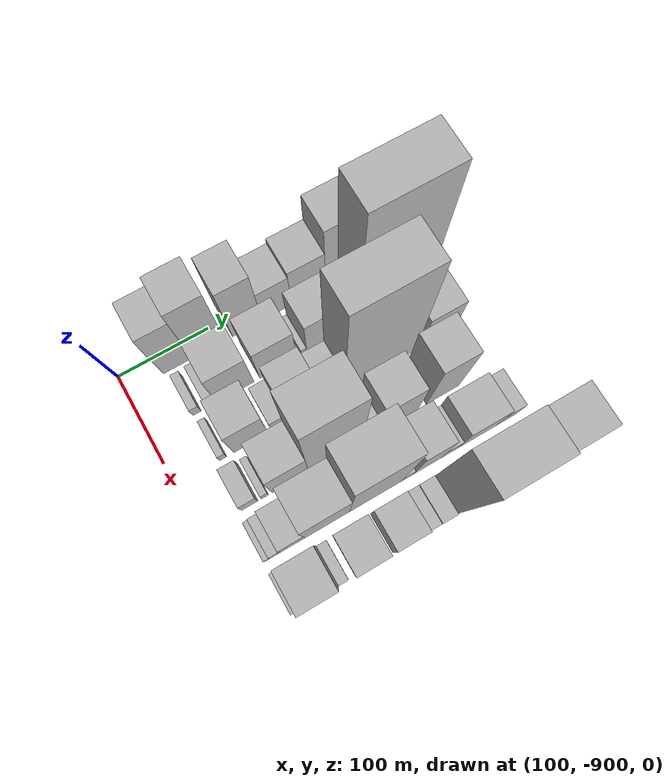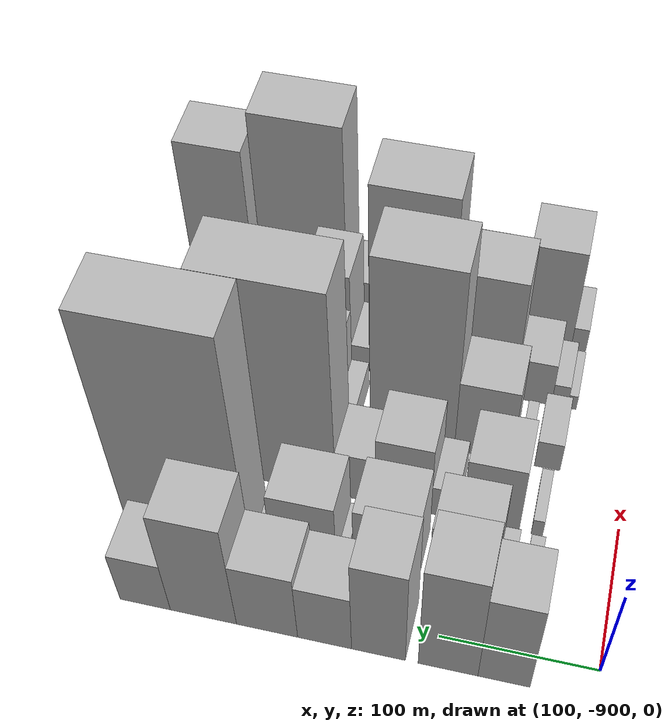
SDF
<sdf version="1.6">
 <world name="default">
  <model name="building_1">
   <static>1</static>
   <pose>100.0000 -844.0381 0 0.000000 0.000000 0.000000</pose>
   <link name="link">
    <pose>0 0 51.00 0 0 0</pose>
    <collision name="collision"><geometry><box><size>40.0000 31.9238 102.0000</size></box></geometry></collision>
    <visual name="visual">
     <cast_shadows>0</cast_shadows>
     <geometry><box><size>40.0000 31.9238 102.0000</size></box></geometry>
     <material>
      <script>
       <uri>model://HANNAS_wall/materials/scripts</uri>
       <uri>model://HANNAS_wall/materials/textures</uri>
       <name>vrc/HANNAS_wall</name>
      </script>
     </material>
    </visual>
   </link>
  </model>
  <model name="building_2">
   <static>1</static>
   <pose>100.0000 -809.5243 0 0.000000 0.000000 0.000000</pose>
   <link name="link">
    <pose>0 0 60.00 0 0 0</pose>
    <collision name="collision"><geometry><box><size>40.0000 37.1037 120.0000</size></box></geometry></collision>
    <visual name="visual">
     <cast_shadows>0</cast_shadows>
     <geometry><box><size>40.0000 37.1037 120.0000</size></box></geometry>
     <material>
      <script>
       <uri>model://HANNAS_wall/materials/scripts</uri>
       <uri>model://HANNAS_wall/materials/textures</uri>
       <name>vrc/HANNAS_wall</name>
      </script>
     </material>
    </visual>
   </link>
  </model>
  <model name="building_3">
   <static>1</static>
   <pose>100.0000 -766.0664 0 0.000000 0.000000 0.000000</pose>
   <link name="link">
    <pose>0 0 54.00 0 0 0</pose>
    <collision name="collision"><geometry><box><size>40.0000 33.8120 108.0000</size></box></geometry></collision>
    <visual name="visual">
     <cast_shadows>0</cast_shadows>
     <geometry><box><size>40.0000 33.8120 108.0000</size></box></geometry>
     <material>
      <script>
       <uri>model://HANNAS_wall/materials/scripts</uri>
       <uri>model://HANNAS_wall/materials/textures</uri>
       <name>vrc/HANNAS_wall</name>
      </script>
     </material>
    </visual>
   </link>
  </model>
  <model name="building_4">
   <static>1</static>
   <pose>100.0000 -732.0055 0 0.000000 0.000000 0.000000</pose>
   <link name="link">
    <pose>0 0 33.00 0 0 0</pose>
    <collision name="collision"><geometry><box><size>40.0000 34.3099 66.0000</size></box></geometry></collision>
    <visual name="visual">
     <cast_shadows>0</cast_shadows>
     <geometry><box><size>40.0000 34.3099 66.0000</size></box></geometry>
     <material>
      <script>
       <uri>model://HANNAS_wall/materials/scripts</uri>
       <uri>model://HANNAS_wall/materials/textures</uri>
       <name>vrc/HANNAS_wall</name>
      </script>
     </material>
    </visual>
   </link>
  </model>
  <model name="building_5">
   <static>1</static>
   <pose>100.0000 -695.1913 0 0.000000 0.000000 0.000000</pose>
   <link name="link">
    <pose>0 0 37.50 0 0 0</pose>
    <collision name="collision"><geometry><box><size>40.0000 39.3186 75.0000</size></box></geometry></collision>
    <visual name="visual">
     <cast_shadows>0</cast_shadows>
     <geometry><box><size>40.0000 39.3186 75.0000</size></box></geometry>
     <material>
      <script>
       <uri>model://HANNAS_wall/materials/scripts</uri>
       <uri>model://HANNAS_wall/materials/textures</uri>
       <name>vrc/HANNAS_wall</name>
      </script>
     </material>
    </visual>
   </link>
  </model>
  <model name="building_6">
   <static>1</static>
   <pose>100.0000 -653.9232 0 0.000000 0.000000 0.000000</pose>
   <link name="link">
    <pose>0 0 58.50 0 0 0</pose>
    <collision name="collision"><geometry><box><size>40.0000 43.2176 117.0000</size></box></geometry></collision>
    <visual name="visual">
     <cast_shadows>0</cast_shadows>
     <geometry><box><size>40.0000 43.2176 117.0000</size></box></geometry>
     <material>
      <script>
       <uri>model://HANNAS_wall/materials/scripts</uri>
       <uri>model://HANNAS_wall/materials/textures</uri>
       <name>vrc/HANNAS_wall</name>
      </script>
     </material>
    </visual>
   </link>
  </model>
  <model name="building_7">
   <static>1</static>
   <pose>100.0000 -615.7278 0 0.000000 0.000000 0.000000</pose>
   <link name="link">
    <pose>0 0 28.50 0 0 0</pose>
    <collision name="collision"><geometry><box><size>40.0000 33.1732 57.0000</size></box></geometry></collision>
    <visual name="visual">
     <cast_shadows>0</cast_shadows>
     <geometry><box><size>40.0000 33.1732 57.0000</size></box></geometry>
     <material>
      <script>
       <uri>model://HANNAS_wall/materials/scripts</uri>
       <uri>model://HANNAS_wall/materials/textures</uri>
       <name>vrc/HANNAS_wall</name>
      </script>
     </material>
    </visual>
   </link>
  </model>
  <model name="building_52">
   <static>1</static>
   <pose>152.0000 -849.5073 0 0.000000 0.000000 0.000000</pose>
   <link name="link">
    <pose>0 0 10.50 0 0 0</pose>
    <collision name="collision"><geometry><box><size>40.0000 8.9854 21.0000</size></box></geometry></collision>
    <visual name="visual">
     <cast_shadows>0</cast_shadows>
     <geometry><box><size>40.0000 8.9854 21.0000</size></box></geometry>
     <material>
      <script>
       <uri>model://HANNAS_wall/materials/scripts</uri>
       <uri>model://HANNAS_wall/materials/textures</uri>
       <name>vrc/HANNAS_wall</name>
      </script>
     </material>
    </visual>
   </link>
  </model>
  <model name="building_53">
   <static>1</static>
   <pose>152.0000 -833.0063 0 0.000000 0.000000 0.000000</pose>
   <link name="link">
    <pose>0 0 12.00 0 0 0</pose>
    <collision name="collision"><geometry><box><size>40.0000 10.0165 24.0000</size></box></geometry></collision>
    <visual name="visual">
     <cast_shadows>0</cast_shadows>
     <geometry><box><size>40.0000 10.0165 24.0000</size></box></geometry>
     <material>
      <script>
       <uri>model://HANNAS_wall/materials/scripts</uri>
       <uri>model://HANNAS_wall/materials/textures</uri>
       <name>vrc/HANNAS_wall</name>
      </script>
     </material>
    </visual>
   </link>
  </model>
  <model name="building_54">
   <static>1</static>
   <pose>152.0000 -807.3436 0 0.000000 0.000000 0.000000</pose>
   <link name="link">
    <pose>0 0 37.50 0 0 0</pose>
    <collision name="collision"><geometry><box><size>40.0000 41.3090 75.0000</size></box></geometry></collision>
    <visual name="visual">
     <cast_shadows>0</cast_shadows>
     <geometry><box><size>40.0000 41.3090 75.0000</size></box></geometry>
     <material>
      <script>
       <uri>model://HANNAS_wall/materials/scripts</uri>
       <uri>model://HANNAS_wall/materials/textures</uri>
       <name>vrc/HANNAS_wall</name>
      </script>
     </material>
    </visual>
   </link>
  </model>
  <model name="building_55">
   <static>1</static>
   <pose>152.0000 -758.8439 0 0.000000 0.000000 0.000000</pose>
   <link name="link">
    <pose>0 0 37.50 0 0 0</pose>
    <collision name="collision"><geometry><box><size>40.0000 41.6903 75.0000</size></box></geometry></collision>
    <visual name="visual">
     <cast_shadows>0</cast_shadows>
     <geometry><box><size>40.0000 41.6903 75.0000</size></box></geometry>
     <material>
      <script>
       <uri>model://HANNAS_wall/materials/scripts</uri>
       <uri>model://HANNAS_wall/materials/textures</uri>
       <name>vrc/HANNAS_wall</name>
      </script>
     </material>
    </visual>
   </link>
  </model>
  <model name="building_56">
   <static>1</static>
   <pose>152.0000 -729.8422 0 0.000000 0.000000 0.000000</pose>
   <link name="link">
    <pose>0 0 7.50 0 0 0</pose>
    <collision name="collision"><geometry><box><size>40.0000 6.3131 15.0000</size></box></geometry></collision>
    <visual name="visual">
     <cast_shadows>0</cast_shadows>
     <geometry><box><size>40.0000 6.3131 15.0000</size></box></geometry>
     <material>
      <script>
       <uri>model://HANNAS_wall/materials/scripts</uri>
       <uri>model://HANNAS_wall/materials/textures</uri>
       <name>vrc/HANNAS_wall</name>
      </script>
     </material>
    </visual>
   </link>
  </model>
  <model name="building_57">
   <static>1</static>
   <pose>152.0000 -705.1297 0 0.000000 0.000000 0.000000</pose>
   <link name="link">
    <pose>0 0 36.00 0 0 0</pose>
    <collision name="collision"><geometry><box><size>40.0000 43.1120 72.0000</size></box></geometry></collision>
    <visual name="visual">
     <cast_shadows>0</cast_shadows>
     <geometry><box><size>40.0000 43.1120 72.0000</size></box></geometry>
     <material>
      <script>
       <uri>model://HANNAS_wall/materials/scripts</uri>
       <uri>model://HANNAS_wall/materials/textures</uri>
       <name>vrc/HANNAS_wall</name>
      </script>
     </material>
    </visual>
   </link>
  </model>
  <model name="building_58">
   <static>1</static>
   <pose>152.0000 -678.5776 0 0.000000 0.000000 0.000000</pose>
   <link name="link">
    <pose>0 0 10.50 0 0 0</pose>
    <collision name="collision"><geometry><box><size>40.0000 9.9922 21.0000</size></box></geometry></collision>
    <visual name="visual">
     <cast_shadows>0</cast_shadows>
     <geometry><box><size>40.0000 9.9922 21.0000</size></box></geometry>
     <material>
      <script>
       <uri>model://HANNAS_wall/materials/scripts</uri>
       <uri>model://HANNAS_wall/materials/textures</uri>
       <name>vrc/HANNAS_wall</name>
      </script>
     </material>
    </visual>
   </link>
  </model>
  <model name="building_59">
   <static>1</static>
   <pose>152.0000 -627.0534 0 0.000000 0.000000 0.000000</pose>
   <link name="link">
    <pose>0 0 112.50 0 0 0</pose>
    <collision name="collision"><geometry><box><size>40.0000 83.0562 225.0000</size></box></geometry></collision>
    <visual name="visual">
     <cast_shadows>0</cast_shadows>
     <geometry><box><size>40.0000 83.0562 225.0000</size></box></geometry>
     <material>
      <script>
       <uri>model://HANNAS_wall/materials/scripts</uri>
       <uri>model://HANNAS_wall/materials/textures</uri>
       <name>vrc/HANNAS_wall</name>
      </script>
     </material>
    </visual>
   </link>
  </model>
  <model name="building_99">
   <static>1</static>
   <pose>204.0000 -848.2488 0 0.000000 0.000000 0.000000</pose>
   <link name="link">
    <pose>0 0 9.00 0 0 0</pose>
    <collision name="collision"><geometry><box><size>40.0000 7.5025 18.0000</size></box></geometry></collision>
    <visual name="visual">
     <cast_shadows>0</cast_shadows>
     <geometry><box><size>40.0000 7.5025 18.0000</size></box></geometry>
     <material>
      <script>
       <uri>model://HANNAS_wall/materials/scripts</uri>
       <uri>model://HANNAS_wall/materials/textures</uri>
       <name>vrc/HANNAS_wall</name>
      </script>
     </material>
    </visual>
   </link>
  </model>
  <model name="building_100">
   <static>1</static>
   <pose>204.0000 -817.7862 0 0.000000 0.000000 0.000000</pose>
   <link name="link">
    <pose>0 0 36.00 0 0 0</pose>
    <collision name="collision"><geometry><box><size>40.0000 37.4227 72.0000</size></box></geometry></collision>
    <visual name="visual">
     <cast_shadows>0</cast_shadows>
     <geometry><box><size>40.0000 37.4227 72.0000</size></box></geometry>
     <material>
      <script>
       <uri>model://HANNAS_wall/materials/scripts</uri>
       <uri>model://HANNAS_wall/materials/textures</uri>
       <name>vrc/HANNAS_wall</name>
      </script>
     </material>
    </visual>
   </link>
  </model>
  <model name="building_101">
   <static>1</static>
   <pose>204.0000 -786.5341 0 0.000000 0.000000 0.000000</pose>
   <link name="link">
    <pose>0 0 16.50 0 0 0</pose>
    <collision name="collision"><geometry><box><size>40.0000 17.0814 33.0000</size></box></geometry></collision>
    <visual name="visual">
     <cast_shadows>0</cast_shadows>
     <geometry><box><size>40.0000 17.0814 33.0000</size></box></geometry>
     <material>
      <script>
       <uri>model://HANNAS_wall/materials/scripts</uri>
       <uri>model://HANNAS_wall/materials/textures</uri>
       <name>vrc/HANNAS_wall</name>
      </script>
     </material>
    </visual>
   </link>
  </model>
  <model name="building_102">
   <static>1</static>
   <pose>204.0000 -759.0897 0 0.000000 0.000000 0.000000</pose>
   <link name="link">
    <pose>0 0 37.50 0 0 0</pose>
    <collision name="collision"><geometry><box><size>40.0000 37.8073 75.0000</size></box></geometry></collision>
    <visual name="visual">
     <cast_shadows>0</cast_shadows>
     <geometry><box><size>40.0000 37.8073 75.0000</size></box></geometry>
     <material>
      <script>
       <uri>model://HANNAS_wall/materials/scripts</uri>
       <uri>model://HANNAS_wall/materials/textures</uri>
       <name>vrc/HANNAS_wall</name>
      </script>
     </material>
    </visual>
   </link>
  </model>
  <model name="building_103">
   <static>1</static>
   <pose>204.0000 -726.8098 0 0.000000 0.000000 0.000000</pose>
   <link name="link">
    <pose>0 0 25.50 0 0 0</pose>
    <collision name="collision"><geometry><box><size>40.0000 26.7525 51.0000</size></box></geometry></collision>
    <visual name="visual">
     <cast_shadows>0</cast_shadows>
     <geometry><box><size>40.0000 26.7525 51.0000</size></box></geometry>
     <material>
      <script>
       <uri>model://HANNAS_wall/materials/scripts</uri>
       <uri>model://HANNAS_wall/materials/textures</uri>
       <name>vrc/HANNAS_wall</name>
      </script>
     </material>
    </visual>
   </link>
  </model>
  <model name="building_104">
   <static>1</static>
   <pose>204.0000 -672.8564 0 0.000000 0.000000 0.000000</pose>
   <link name="link">
    <pose>0 0 105.00 0 0 0</pose>
    <collision name="collision"><geometry><box><size>40.0000 81.1543 210.0000</size></box></geometry></collision>
    <visual name="visual">
     <cast_shadows>0</cast_shadows>
     <geometry><box><size>40.0000 81.1543 210.0000</size></box></geometry>
     <material>
      <script>
       <uri>model://HANNAS_wall/materials/scripts</uri>
       <uri>model://HANNAS_wall/materials/textures</uri>
       <name>vrc/HANNAS_wall</name>
      </script>
     </material>
    </visual>
   </link>
  </model>
  <model name="building_105">
   <static>1</static>
   <pose>204.0000 -606.0119 0 0.000000 0.000000 0.000000</pose>
   <link name="link">
    <pose>0 0 37.50 0 0 0</pose>
    <collision name="collision"><geometry><box><size>40.0000 38.5346 75.0000</size></box></geometry></collision>
    <visual name="visual">
     <cast_shadows>0</cast_shadows>
     <geometry><box><size>40.0000 38.5346 75.0000</size></box></geometry>
     <material>
      <script>
       <uri>model://HANNAS_wall/materials/scripts</uri>
       <uri>model://HANNAS_wall/materials/textures</uri>
       <name>vrc/HANNAS_wall</name>
      </script>
     </material>
    </visual>
   </link>
  </model>
  <model name="building_147">
   <static>1</static>
   <pose>256.0000 -847.3087 0 0.000000 0.000000 0.000000</pose>
   <link name="link">
    <pose>0 0 15.00 0 0 0</pose>
    <collision name="collision"><geometry><box><size>40.0000 17.3825 30.0000</size></box></geometry></collision>
    <visual name="visual">
     <cast_shadows>0</cast_shadows>
     <geometry><box><size>40.0000 17.3825 30.0000</size></box></geometry>
     <material>
      <script>
       <uri>model://HANNAS_wall/materials/scripts</uri>
       <uri>model://HANNAS_wall/materials/textures</uri>
       <name>vrc/HANNAS_wall</name>
      </script>
     </material>
    </visual>
   </link>
  </model>
  <model name="building_148">
   <static>1</static>
   <pose>256.0000 -830.9645 0 0.000000 0.000000 0.000000</pose>
   <link name="link">
    <pose>0 0 9.00 0 0 0</pose>
    <collision name="collision"><geometry><box><size>40.0000 7.3059 18.0000</size></box></geometry></collision>
    <visual name="visual">
     <cast_shadows>0</cast_shadows>
     <geometry><box><size>40.0000 7.3059 18.0000</size></box></geometry>
     <material>
      <script>
       <uri>model://HANNAS_wall/materials/scripts</uri>
       <uri>model://HANNAS_wall/materials/textures</uri>
       <name>vrc/HANNAS_wall</name>
      </script>
     </material>
    </visual>
   </link>
  </model>
  <model name="building_149">
   <static>1</static>
   <pose>256.0000 -803.4341 0 0.000000 0.000000 0.000000</pose>
   <link name="link">
    <pose>0 0 39.00 0 0 0</pose>
    <collision name="collision"><geometry><box><size>40.0000 39.7551 78.0000</size></box></geometry></collision>
    <visual name="visual">
     <cast_shadows>0</cast_shadows>
     <geometry><box><size>40.0000 39.7551 78.0000</size></box></geometry>
     <material>
      <script>
       <uri>model://HANNAS_wall/materials/scripts</uri>
       <uri>model://HANNAS_wall/materials/textures</uri>
       <name>vrc/HANNAS_wall</name>
      </script>
     </material>
    </visual>
   </link>
  </model>
  <model name="building_150">
   <static>1</static>
   <pose>256.0000 -754.1750 0 0.000000 0.000000 0.000000</pose>
   <link name="link">
    <pose>0 0 93.00 0 0 0</pose>
    <collision name="collision"><geometry><box><size>40.0000 58.7630 186.0000</size></box></geometry></collision>
    <visual name="visual">
     <cast_shadows>0</cast_shadows>
     <geometry><box><size>40.0000 58.7630 186.0000</size></box></geometry>
     <material>
      <script>
       <uri>model://HANNAS_wall/materials/scripts</uri>
       <uri>model://HANNAS_wall/materials/textures</uri>
       <name>vrc/HANNAS_wall</name>
      </script>
     </material>
    </visual>
   </link>
  </model>
  <model name="building_151">
   <static>1</static>
   <pose>256.0000 -708.6237 0 0.000000 0.000000 0.000000</pose>
   <link name="link">
    <pose>0 0 13.50 0 0 0</pose>
    <collision name="collision"><geometry><box><size>40.0000 12.3395 27.0000</size></box></geometry></collision>
    <visual name="visual">
     <cast_shadows>0</cast_shadows>
     <geometry><box><size>40.0000 12.3395 27.0000</size></box></geometry>
     <material>
      <script>
       <uri>model://HANNAS_wall/materials/scripts</uri>
       <uri>model://HANNAS_wall/materials/textures</uri>
       <name>vrc/HANNAS_wall</name>
      </script>
     </material>
    </visual>
   </link>
  </model>
  <model name="building_152">
   <static>1</static>
   <pose>256.0000 -681.6784 0 0.000000 0.000000 0.000000</pose>
   <link name="link">
    <pose>0 0 40.50 0 0 0</pose>
    <collision name="collision"><geometry><box><size>40.0000 41.5511 81.0000</size></box></geometry></collision>
    <visual name="visual">
     <cast_shadows>0</cast_shadows>
     <geometry><box><size>40.0000 41.5511 81.0000</size></box></geometry>
     <material>
      <script>
       <uri>model://HANNAS_wall/materials/scripts</uri>
       <uri>model://HANNAS_wall/materials/textures</uri>
       <name>vrc/HANNAS_wall</name>
      </script>
     </material>
    </visual>
   </link>
  </model>
  <model name="building_153">
   <static>1</static>
   <pose>256.0000 -633.2873 0 0.000000 0.000000 0.000000</pose>
   <link name="link">
    <pose>0 0 57.00 0 0 0</pose>
    <collision name="collision"><geometry><box><size>40.0000 37.2311 114.0000</size></box></geometry></collision>
    <visual name="visual">
     <cast_shadows>0</cast_shadows>
     <geometry><box><size>40.0000 37.2311 114.0000</size></box></geometry>
     <material>
      <script>
       <uri>model://HANNAS_wall/materials/scripts</uri>
       <uri>model://HANNAS_wall/materials/textures</uri>
       <name>vrc/HANNAS_wall</name>
      </script>
     </material>
    </visual>
   </link>
  </model>
  <model name="building_196">
   <static>1</static>
   <pose>308.0000 -856.9905 0 0.000000 0.000000 0.000000</pose>
   <link name="link">
    <pose>0 0 7.50 0 0 0</pose>
    <collision name="collision"><geometry><box><size>40.0000 6.0190 15.0000</size></box></geometry></collision>
    <visual name="visual">
     <cast_shadows>0</cast_shadows>
     <geometry><box><size>40.0000 6.0190 15.0000</size></box></geometry>
     <material>
      <script>
       <uri>model://HANNAS_wall/materials/scripts</uri>
       <uri>model://HANNAS_wall/materials/textures</uri>
       <name>vrc/HANNAS_wall</name>
      </script>
     </material>
    </visual>
   </link>
  </model>
  <model name="building_197">
   <static>1</static>
   <pose>308.0000 -848.3331 0 0.000000 0.000000 0.000000</pose>
   <link name="link">
    <pose>0 0 12.00 0 0 0</pose>
    <collision name="collision"><geometry><box><size>40.0000 11.2957 24.0000</size></box></geometry></collision>
    <visual name="visual">
     <cast_shadows>0</cast_shadows>
     <geometry><box><size>40.0000 11.2957 24.0000</size></box></geometry>
     <material>
      <script>
       <uri>model://HANNAS_wall/materials/scripts</uri>
       <uri>model://HANNAS_wall/materials/textures</uri>
       <name>vrc/HANNAS_wall</name>
      </script>
     </material>
    </visual>
   </link>
  </model>
  <model name="building_198">
   <static>1</static>
   <pose>308.0000 -829.5693 0 0.000000 0.000000 0.000000</pose>
   <link name="link">
    <pose>0 0 22.50 0 0 0</pose>
    <collision name="collision"><geometry><box><size>40.0000 26.2318 45.0000</size></box></geometry></collision>
    <visual name="visual">
     <cast_shadows>0</cast_shadows>
     <geometry><box><size>40.0000 26.2318 45.0000</size></box></geometry>
     <material>
      <script>
       <uri>model://HANNAS_wall/materials/scripts</uri>
       <uri>model://HANNAS_wall/materials/textures</uri>
       <name>vrc/HANNAS_wall</name>
      </script>
     </material>
    </visual>
   </link>
  </model>
  <model name="building_199">
   <static>1</static>
   <pose>308.0000 -792.8160 0 0.000000 0.000000 0.000000</pose>
   <link name="link">
    <pose>0 0 61.50 0 0 0</pose>
    <collision name="collision"><geometry><box><size>40.0000 47.2749 123.0000</size></box></geometry></collision>
    <visual name="visual">
     <cast_shadows>0</cast_shadows>
     <geometry><box><size>40.0000 47.2749 123.0000</size></box></geometry>
     <material>
      <script>
       <uri>model://HANNAS_wall/materials/scripts</uri>
       <uri>model://HANNAS_wall/materials/textures</uri>
       <name>vrc/HANNAS_wall</name>
      </script>
     </material>
    </visual>
   </link>
  </model>
  <model name="building_200">
   <static>1</static>
   <pose>308.0000 -740.6495 0 0.000000 0.000000 0.000000</pose>
   <link name="link">
    <pose>0 0 94.50 0 0 0</pose>
    <collision name="collision"><geometry><box><size>40.0000 57.0581 189.0000</size></box></geometry></collision>
    <visual name="visual">
     <cast_shadows>0</cast_shadows>
     <geometry><box><size>40.0000 57.0581 189.0000</size></box></geometry>
     <material>
      <script>
       <uri>model://HANNAS_wall/materials/scripts</uri>
       <uri>model://HANNAS_wall/materials/textures</uri>
       <name>vrc/HANNAS_wall</name>
      </script>
     </material>
    </visual>
   </link>
  </model>
  <model name="building_201">
   <static>1</static>
   <pose>308.0000 -705.6132 0 0.000000 0.000000 0.000000</pose>
   <link name="link">
    <pose>0 0 13.50 0 0 0</pose>
    <collision name="collision"><geometry><box><size>40.0000 13.0146 27.0000</size></box></geometry></collision>
    <visual name="visual">
     <cast_shadows>0</cast_shadows>
     <geometry><box><size>40.0000 13.0146 27.0000</size></box></geometry>
     <material>
      <script>
       <uri>model://HANNAS_wall/materials/scripts</uri>
       <uri>model://HANNAS_wall/materials/textures</uri>
       <name>vrc/HANNAS_wall</name>
      </script>
     </material>
    </visual>
   </link>
  </model>
  <model name="building_202">
   <static>1</static>
   <pose>308.0000 -683.5495 0 0.000000 0.000000 0.000000</pose>
   <link name="link">
    <pose>0 0 49.50 0 0 0</pose>
    <collision name="collision"><geometry><box><size>40.0000 31.1127 99.0000</size></box></geometry></collision>
    <visual name="visual">
     <cast_shadows>0</cast_shadows>
     <geometry><box><size>40.0000 31.1127 99.0000</size></box></geometry>
     <material>
      <script>
       <uri>model://HANNAS_wall/materials/scripts</uri>
       <uri>model://HANNAS_wall/materials/textures</uri>
       <name>vrc/HANNAS_wall</name>
      </script>
     </material>
    </visual>
   </link>
  </model>
  <model name="building_203">
   <static>1</static>
   <pose>308.0000 -658.3597 0 0.000000 0.000000 0.000000</pose>
   <link name="link">
    <pose>0 0 18.00 0 0 0</pose>
    <collision name="collision"><geometry><box><size>40.0000 19.2668 36.0000</size></box></geometry></collision>
    <visual name="visual">
     <cast_shadows>0</cast_shadows>
     <geometry><box><size>40.0000 19.2668 36.0000</size></box></geometry>
     <material>
      <script>
       <uri>model://HANNAS_wall/materials/scripts</uri>
       <uri>model://HANNAS_wall/materials/textures</uri>
       <name>vrc/HANNAS_wall</name>
      </script>
     </material>
    </visual>
   </link>
  </model>
  <model name="building_204">
   <static>1</static>
   <pose>308.0000 -627.1568 0 0.000000 0.000000 0.000000</pose>
   <link name="link">
    <pose>0 0 36.00 0 0 0</pose>
    <collision name="collision"><geometry><box><size>40.0000 43.1391 72.0000</size></box></geometry></collision>
    <visual name="visual">
     <cast_shadows>0</cast_shadows>
     <geometry><box><size>40.0000 43.1391 72.0000</size></box></geometry>
     <material>
      <script>
       <uri>model://HANNAS_wall/materials/scripts</uri>
       <uri>model://HANNAS_wall/materials/textures</uri>
       <name>vrc/HANNAS_wall</name>
      </script>
     </material>
    </visual>
   </link>
  </model>
  <model name="building_205">
   <static>1</static>
   <pose>308.0000 -593.8520 0 0.000000 0.000000 0.000000</pose>
   <link name="link">
    <pose>0 0 21.00 0 0 0</pose>
    <collision name="collision"><geometry><box><size>40.0000 23.4705 42.0000</size></box></geometry></collision>
    <visual name="visual">
     <cast_shadows>0</cast_shadows>
     <geometry><box><size>40.0000 23.4705 42.0000</size></box></geometry>
     <material>
      <script>
       <uri>model://HANNAS_wall/materials/scripts</uri>
       <uri>model://HANNAS_wall/materials/textures</uri>
       <name>vrc/HANNAS_wall</name>
      </script>
     </material>
    </visual>
   </link>
  </model>
  <model name="building_247">
   <static>1</static>
   <pose>360.0000 -854.6586 0 0.000000 0.000000 0.000000</pose>
   <link name="link">
    <pose>0 0 12.00 0 0 0</pose>
    <collision name="collision"><geometry><box><size>40.0000 10.6829 24.0000</size></box></geometry></collision>
    <visual name="visual">
     <cast_shadows>0</cast_shadows>
     <geometry><box><size>40.0000 10.6829 24.0000</size></box></geometry>
     <material>
      <script>
       <uri>model://HANNAS_wall/materials/scripts</uri>
       <uri>model://HANNAS_wall/materials/textures</uri>
       <name>vrc/HANNAS_wall</name>
      </script>
     </material>
    </visual>
   </link>
  </model>
  <model name="building_248">
   <static>1</static>
   <pose>360.0000 -830.3677 0 0.000000 0.000000 0.000000</pose>
   <link name="link">
    <pose>0 0 51.00 0 0 0</pose>
    <collision name="collision"><geometry><box><size>40.0000 37.8989 102.0000</size></box></geometry></collision>
    <visual name="visual">
     <cast_shadows>0</cast_shadows>
     <geometry><box><size>40.0000 37.8989 102.0000</size></box></geometry>
     <material>
      <script>
       <uri>model://HANNAS_wall/materials/scripts</uri>
       <uri>model://HANNAS_wall/materials/textures</uri>
       <name>vrc/HANNAS_wall</name>
      </script>
     </material>
    </visual>
   </link>
  </model>
  <model name="building_249">
   <static>1</static>
   <pose>360.0000 -806.2090 0 0.000000 0.000000 0.000000</pose>
   <link name="link">
    <pose>0 0 10.50 0 0 0</pose>
    <collision name="collision"><geometry><box><size>40.0000 10.4186 21.0000</size></box></geometry></collision>
    <visual name="visual">
     <cast_shadows>0</cast_shadows>
     <geometry><box><size>40.0000 10.4186 21.0000</size></box></geometry>
     <material>
      <script>
       <uri>model://HANNAS_wall/materials/scripts</uri>
       <uri>model://HANNAS_wall/materials/textures</uri>
       <name>vrc/HANNAS_wall</name>
      </script>
     </material>
    </visual>
   </link>
  </model>
  <model name="building_250">
   <static>1</static>
   <pose>360.0000 -776.5970 0 0.000000 0.000000 0.000000</pose>
   <link name="link">
    <pose>0 0 33.00 0 0 0</pose>
    <collision name="collision"><geometry><box><size>40.0000 34.8052 66.0000</size></box></geometry></collision>
    <visual name="visual">
     <cast_shadows>0</cast_shadows>
     <geometry><box><size>40.0000 34.8052 66.0000</size></box></geometry>
     <material>
      <script>
       <uri>model://HANNAS_wall/materials/scripts</uri>
       <uri>model://HANNAS_wall/materials/textures</uri>
       <name>vrc/HANNAS_wall</name>
      </script>
     </material>
    </visual>
   </link>
  </model>
  <model name="building_251">
   <static>1</static>
   <pose>360.0000 -736.1691 0 0.000000 0.000000 0.000000</pose>
   <link name="link">
    <pose>0 0 28.50 0 0 0</pose>
    <collision name="collision"><geometry><box><size>40.0000 34.0507 57.0000</size></box></geometry></collision>
    <visual name="visual">
     <cast_shadows>0</cast_shadows>
     <geometry><box><size>40.0000 34.0507 57.0000</size></box></geometry>
     <material>
      <script>
       <uri>model://HANNAS_wall/materials/scripts</uri>
       <uri>model://HANNAS_wall/materials/textures</uri>
       <name>vrc/HANNAS_wall</name>
      </script>
     </material>
    </visual>
   </link>
  </model>
  <model name="building_252">
   <static>1</static>
   <pose>360.0000 -711.5205 0 0.000000 0.000000 0.000000</pose>
   <link name="link">
    <pose>0 0 15.00 0 0 0</pose>
    <collision name="collision"><geometry><box><size>40.0000 15.2465 30.0000</size></box></geometry></collision>
    <visual name="visual">
     <cast_shadows>0</cast_shadows>
     <geometry><box><size>40.0000 15.2465 30.0000</size></box></geometry>
     <material>
      <script>
       <uri>model://HANNAS_wall/materials/scripts</uri>
       <uri>model://HANNAS_wall/materials/textures</uri>
       <name>vrc/HANNAS_wall</name>
      </script>
     </material>
    </visual>
   </link>
  </model>
  <model name="building_253">
   <static>1</static>
   <pose>360.0000 -695.5574 0 0.000000 0.000000 0.000000</pose>
   <link name="link">
    <pose>0 0 16.50 0 0 0</pose>
    <collision name="collision"><geometry><box><size>40.0000 16.6796 33.0000</size></box></geometry></collision>
    <visual name="visual">
     <cast_shadows>0</cast_shadows>
     <geometry><box><size>40.0000 16.6796 33.0000</size></box></geometry>
     <material>
      <script>
       <uri>model://HANNAS_wall/materials/scripts</uri>
       <uri>model://HANNAS_wall/materials/textures</uri>
       <name>vrc/HANNAS_wall</name>
      </script>
     </material>
    </visual>
   </link>
  </model>
  <model name="building_254">
   <static>1</static>
   <pose>360.0000 -651.7566 0 0.000000 0.000000 0.000000</pose>
   <link name="link">
    <pose>0 0 90.00 0 0 0</pose>
    <collision name="collision"><geometry><box><size>40.0000 62.9220 180.0000</size></box></geometry></collision>
    <visual name="visual">
     <cast_shadows>0</cast_shadows>
     <geometry><box><size>40.0000 62.9220 180.0000</size></box></geometry>
     <material>
      <script>
       <uri>model://HANNAS_wall/materials/scripts</uri>
       <uri>model://HANNAS_wall/materials/textures</uri>
       <name>vrc/HANNAS_wall</name>
      </script>
     </material>
    </visual>
   </link>
  </model>
  <model name="building_255">
   <static>1</static>
   <pose>360.0000 -616.8908 0 0.000000 0.000000 0.000000</pose>
   <link name="link">
    <pose>0 0 7.50 0 0 0</pose>
    <collision name="collision"><geometry><box><size>40.0000 6.8096 15.0000</size></box></geometry></collision>
    <visual name="visual">
     <cast_shadows>0</cast_shadows>
     <geometry><box><size>40.0000 6.8096 15.0000</size></box></geometry>
     <material>
      <script>
       <uri>model://HANNAS_wall/materials/scripts</uri>
       <uri>model://HANNAS_wall/materials/textures</uri>
       <name>vrc/HANNAS_wall</name>
      </script>
     </material>
    </visual>
   </link>
  </model>
  <model name="building_256">
   <static>1</static>
   <pose>360.0000 -589.9233 0 0.000000 0.000000 0.000000</pose>
   <link name="link">
    <pose>0 0 72.00 0 0 0</pose>
    <collision name="collision"><geometry><box><size>40.0000 47.1254 144.0000</size></box></geometry></collision>
    <visual name="visual">
     <cast_shadows>0</cast_shadows>
     <geometry><box><size>40.0000 47.1254 144.0000</size></box></geometry>
     <material>
      <script>
       <uri>model://HANNAS_wall/materials/scripts</uri>
       <uri>model://HANNAS_wall/materials/textures</uri>
       <name>vrc/HANNAS_wall</name>
      </script>
     </material>
    </visual>
   </link>
  </model>
 </world>
</sdf>
